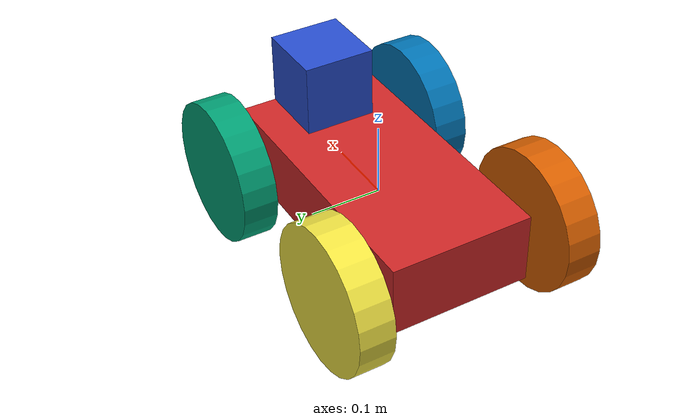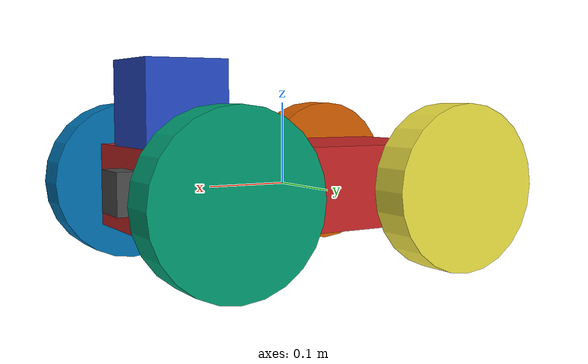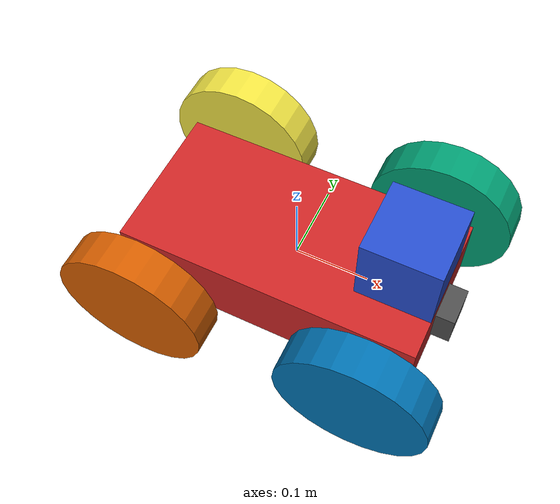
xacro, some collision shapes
<?xml version="1.0"?>
<robot name="my_robot" xmlns:xacro="http://www.ros.org/wiki/xacro">
    <xacro:include filename="$(find my_robot)/urdf/my_robot.gazebo" />

    <link name="robot_footprint"></link>

    <joint name="robot_footprint_joint" type="fixed">
        <origin xyz="0 0 0" rpy="0 0 0" />
        <parent link="robot_footprint" />
        <child link="chassis" />
    </joint>

    <link name="chassis">
        <pose>0 0 0.1 0 0 0</pose>

        <inertial>
            <mass value="15.0" />
            <origin xyz="0.0 0 0" rpy=" 0 0 0" />
            <inertia ixx="0.1" ixy="0" ixz="0" iyy="0.1" iyz="0" izz="0.1" />
        </inertial>

        <collision name="collision">
            <origin xyz="0 0 0" rpy=" 0 0 0" />
            <geometry>
                <box size=".4 .2 .1" />
            </geometry>
        </collision>

        <visual name="chassis_visual">
            <origin xyz="0 0 0" rpy=" 0 0 0" />
            <geometry>
                <box size=".4 .2 .1" />
            </geometry>
        </visual>
    </link>

    <link name="front_left_wheel">
        <inertial>
            <mass value="5.0" />
            <origin xyz="0 0 0" rpy="0 1.5707 1.5707" />
            <inertia ixx="0.1" ixy="0" ixz="0" iyy="0.1" iyz="0" izz="0.1" />
        </inertial>

        <collision name="front_left_wheel_collision">
            <origin xyz="0 0 0" rpy="0 1.5707 1.5707" />
            <geometry>
                <cylinder radius="0.1" length="0.049" />
            </geometry>
            <surface>
                <!-- Copied from Pioneer 3AT -->
                <contact>
                    <ode>
                        <kp>1e+06</kp>
                        <kd>100</kd>
                        <max_vel>1</max_vel>
                        <min_depth>0</min_depth>
                    </ode>
                </contact>
                <friction>
                    <ode>
                        <mu>1</mu>
                        <mu2>1</mu2>
                        <fdir1>0 1 0</fdir1>
                    </ode>
                </friction>
            </surface>
        </collision>

        <visual name="front_left_wheel_visual">
            <origin xyz="0 0 0" rpy="0 1.5707 1.5707" />
            <geometry>
                <cylinder radius="0.1" length="0.049" />
            </geometry>
        </visual>
    </link>

    <link name="back_left_wheel">
        <inertial>
            <mass value="5.0" />
            <origin xyz="0 0 0" rpy="0 1.5707 1.5707" />
            <inertia ixx="0.1" ixy="0" ixz="0" iyy="0.1" iyz="0" izz="0.1" />
        </inertial>

        <collision name="back_left_wheel_collision">
            <origin xyz="0 0 0" rpy="0 1.5707 1.5707" />
            <geometry>
                <cylinder radius="0.1" length="0.049" />
            </geometry>
            <surface>
                <!-- Copied from Pioneer 3AT -->
                <contact>
                    <ode>
                        <kp>1e+06</kp>
                        <kd>100</kd>
                        <max_vel>1</max_vel>
                        <min_depth>0</min_depth>
                    </ode>
                </contact>
                <friction>
                    <ode>
                        <mu>1</mu>
                        <mu2>1</mu2>
                        <fdir1>0 1 0</fdir1>
                    </ode>
                </friction>
            </surface>
        </collision>

        <visual name="back_left_wheel_visual">
            <origin xyz="0 0 0" rpy="0 1.5707 1.5707" />
            <geometry>
                <cylinder radius="0.1" length="0.049" />
            </geometry>
        </visual>
    </link>

    <link name="front_right_wheel">
        <inertial>
            <mass value="5.0" />
            <origin xyz="0 0 0" rpy="0 1.5707 1.5707" />
            <inertia ixx="0.1" ixy="0" ixz="0" iyy="0.1" iyz="0" izz="0.1" />
        </inertial>

        <collision name="front_right_wheel_collision">
            <origin xyz="0 0 0" rpy="0 1.5707 1.5707" />
            <geometry>
                <cylinder radius="0.1" length="0.049" />
            </geometry>
            <surface>
                <!-- Copied from Pioneer 3AT -->
                <contact>
                    <ode>
                        <kp>1e+06</kp>
                        <kd>100</kd>
                        <max_vel>1</max_vel>
                        <min_depth>0</min_depth>
                    </ode>
                </contact>
                <friction>
                    <ode>
                        <mu>1</mu>
                        <mu2>1</mu2>
                        <fdir1>0 1 0</fdir1>
                    </ode>
                </friction>
            </surface>
        </collision>

        <visual name="front_right_wheel_visual">
            <origin xyz="0 0 0" rpy="0 1.5707 1.5707" />
            <geometry>
                <cylinder radius="0.1" length="0.049" />
            </geometry>
        </visual>
    </link>

    <link name="back_right_wheel">
        <inertial>
            <mass value="5.0" />
            <origin xyz="0 0 0" rpy="0 1.5707 1.5707" />
            <inertia ixx="0.1" ixy="0" ixz="0" iyy="0.1" iyz="0" izz="0.1" />
        </inertial>

        <collision name="back_right_wheel_collision">
            <origin xyz="0 0 0" rpy="0 1.5707 1.5707" />
            <geometry>
                <cylinder radius="0.1" length="0.049" />
            </geometry>
            <surface>
                <!-- Copied from Pioneer 3AT -->
                <contact>
                    <ode>
                        <kp>1e+06</kp>
                        <kd>100</kd>
                        <max_vel>1</max_vel>
                        <min_depth>0</min_depth>
                    </ode>
                </contact>
                <friction>
                    <ode>
                        <mu>1</mu>
                        <mu2>1</mu2>
                        <fdir1>0 1 0</fdir1>
                    </ode>
                </friction>
            </surface>
        </collision>

        <visual name="back_right_wheel_visual">
            <origin xyz="0 0 0" rpy="0 1.5707 1.5707" />
            <geometry>
                <cylinder radius="0.1" length="0.049" />
            </geometry>
        </visual>
    </link>

    <joint type="continuous" name="front_left_wheel_hinge">
        <origin xyz="0.15 0.15 0" rpy="0 0 0" />
        <child link="front_left_wheel" />
        <parent link="chassis" />
        <axis xyz="0 1 0" rpy="0 0 0" />
        <limit effort="10000" velocity="1000" />
        <dynamics damping="1.0" friction="1.0" />
    </joint>

    <joint type="continuous" name="back_left_wheel_hinge">
        <origin xyz="-0.15 0.15 0" rpy="0 0 0" />
        <child link="back_left_wheel" />
        <parent link="chassis" />
        <axis xyz="0 1 0" rpy="0 0 0" />
        <limit effort="10000" velocity="1000" />
        <dynamics damping="1.0" friction="1.0" />
    </joint>

    <joint type="continuous" name="front_right_wheel_hinge">
        <origin xyz="0.15 -0.15 0" rpy="0 0 0" />
        <child link="front_right_wheel" />
        <parent link="chassis" />
        <axis xyz="0 1 0" rpy="0 0 0" />
        <limit effort="10000" velocity="1000" />
        <dynamics damping="1.0" friction="1.0" />
    </joint>

    <joint type="continuous" name="back_right_wheel_hinge">
        <origin xyz="-0.15 -0.15 0" rpy="0 0 0" />
        <child link="back_right_wheel" />
        <parent link="chassis" />
        <axis xyz="0 1 0" rpy="0 0 0" />
        <limit effort="10000" velocity="1000" />
        <dynamics damping="1.0" friction="1.0" />
    </joint>

    <link name="camera">
        <inertial>
            <mass value="0.1" />
            <origin xyz="0 0 0" rpy="0 0 0" />
            <inertia ixx="1e-6" ixy="0" ixz="0" iyy="1e-6" iyz="0" izz="1e-6" />
        </inertial>

        <collision name="camera_collision">
            <origin xyz="0 0 0" rpy="0 0 0" />
            <geometry>
                <box size="0.05 0.05 0.05" />
            </geometry>
        </collision>

        <visual name="camera_visual">
            <origin xyz="0 0 0" rpy="0 0 0" />
            <geometry>
                <box size="0.05 0.05 0.05" />
            </geometry>
        </visual>
    </link>

    <joint type="fixed" name="camera_joint">
        <origin xyz="0.2 0 0" rpy="0 0 0" />
        <child link="camera" />
        <parent link="chassis" />
        <axis xyz="0 1 0" rpy="0 0 0" />
        <limit effort="10000" velocity="1000" />
        <dynamics damping="1.0" friction="1.0" />
    </joint>

    <link name="hokuyo">
        <inertial>
            <mass value="1e-5" />
            <origin xyz="0 0 0" rpy="0 0 0" />
            <inertia ixx="1e-6" ixy="0" ixz="0" iyy="1e-6" iyz="0" izz="1e-6" />
        </inertial>

        <collision name="hokuyo_collision">
            <origin xyz="0 0 0" rpy="0 0 0" />
            <geometry>
                <box size="0.1 0.1 0.1" />
            </geometry>
        </collision>

        <visual name="hokuyo_visual">
            <origin xyz="0 0 0" rpy="0 0 0" />
            <geometry>
                <mesh filename="package://my_robot/meshes/hokuyo.dae" />
            </geometry>
        </visual>
    </link>

    <joint type="fixed" name="hokuyo_joint">
        <origin xyz="0.15 0 0.1" rpy="0 0 0" />
        <child link="hokuyo" />
        <parent link="chassis" />
        <axis xyz="0 1 0" rpy="0 0 0" />
        <limit effort="10000" velocity="1000" />
        <dynamics damping="1.0" friction="1.0" />
    </joint>

    <gazebo reference="left_wheel">
        <material>Gazebo/Black</material>
    </gazebo>

    <gazebo reference="right_wheel">
        <material>Gazebo/Black</material>
    </gazebo>

    <gazebo reference="chassis">
        <material>Gazebo/RedTransparent</material>
    </gazebo>

    <gazebo reference="camera">
        <material>Gazebo/DarkGrey</material>
    </gazebo>

    <gazebo reference="hokuyo">
        <material>Gazebo/LightBlueLaser</material>
    </gazebo>

</robot>
